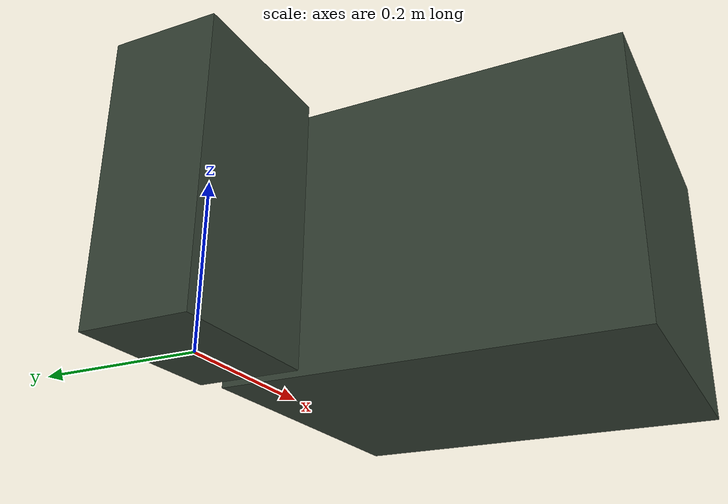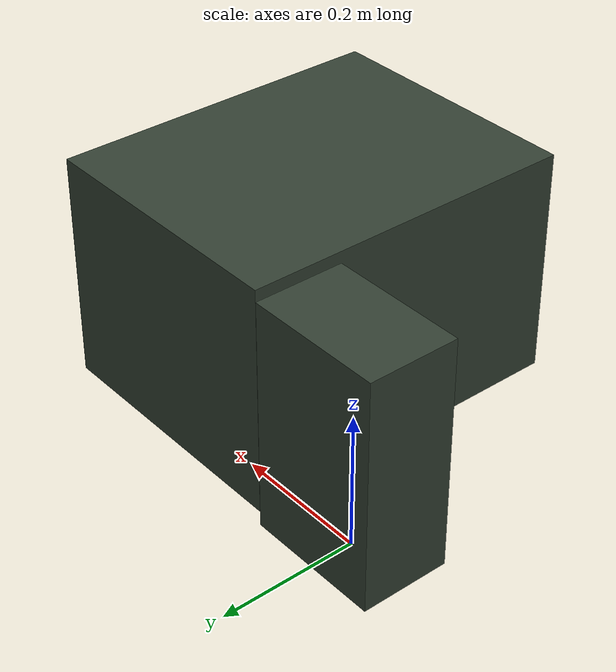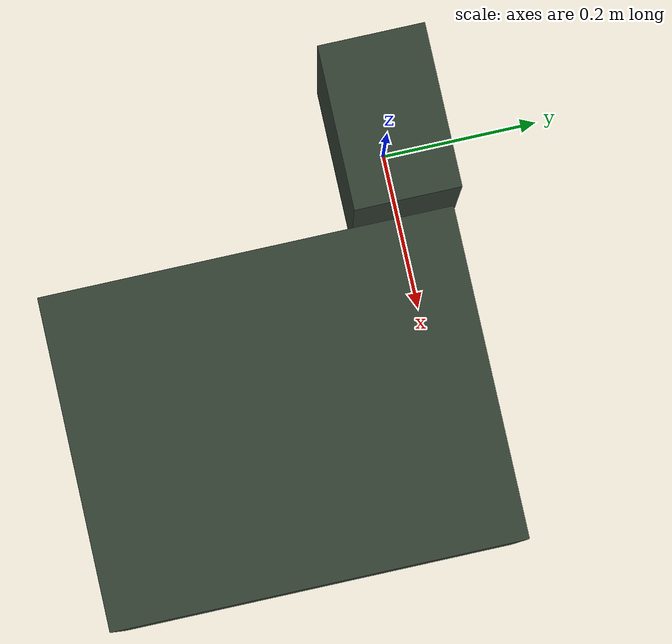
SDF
<sdf version="1.6">
    <model name="car_tube_and_tank">
        <allow_auto_disable>true</allow_auto_disable>
        <link name="box">
            <kinematic>true</kinematic>
            <pose>0.32 -0.2 0.17 0 0 0 0</pose>
            <visual name="visual">
                <geometry>
                    <box>
                        <size>0.40 0.5 0.34</size>
                    </box>
                </geometry>
                <material>
                    <ambient>0.2 0.2 0.25 1.0</ambient>
                    <diffuse>0.2 0.25 0.2 1.0</diffuse>
                </material>
            </visual>
            <collision name="collision">
                <geometry>
                    <box>
                        <size>0.40 0.5 0.34</size>
                    </box>
                </geometry>
            </collision>
        </link>
        <link name="tube">
            <kinematic>true</kinematic>
            <pose>0 0 0.17 0 0 0 0</pose>
            <visual name="visual">
                <geometry>
                    <box>
                        <size>0.2 0.13 0.34</size>
                    </box>
                </geometry>
                <material>
                    <ambient>0.2 0.25 0.2 1.0</ambient>
                    <diffuse>0.2 0.25 0.2 1.0</diffuse>
                </material>
            </visual>
            <collision name="collision">
                <geometry>
                    <box>
                        <size>0.2 0.18 0.34</size>
                    </box>
                </geometry>
            </collision>
        </link>
    </model>
</sdf>
